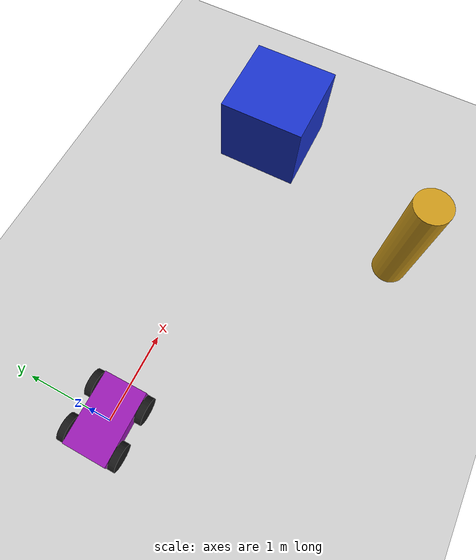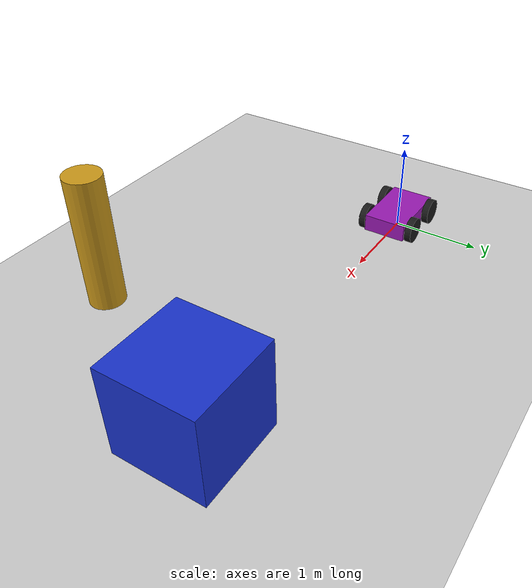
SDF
<?xml version="1.0" ?>
<sdf version="1.8">
  <world name="mundo_tarea">

    <physics name="1ms" type="ignored">
      <max_step_size>0.001</max_step_size>
      <real_time_factor>1.0</real_time_factor>
    </physics>

    <!-- ====== SISTEMAS DEL MUNDO (ya listos, NO tocar) ================= -->
    <plugin filename="ignition-gazebo-physics-system"
            name="ignition::gazebo::systems::Physics"/>
    <plugin filename="ignition-gazebo-user-commands-system"
            name="ignition::gazebo::systems::UserCommands"/>
    <plugin filename="ignition-gazebo-scene-broadcaster-system"
            name="ignition::gazebo::systems::SceneBroadcaster"/>
    <!-- Activa cámara y LIDAR (sensores de render): -->
    <plugin filename="ignition-gazebo-sensors-system"
            name="ignition::gazebo::systems::Sensors">
      <render_engine>ogre2</render_engine>
    </plugin>
    <!-- Activa los sensores IMU: -->
    <plugin filename="ignition-gazebo-imu-system"
            name="ignition::gazebo::systems::Imu"/>
    <plugin filename="ignition-gazebo-navsat-system"
        name="ignition::gazebo::systems::NavSat"/>

    <light type="directional" name="sol">
      <cast_shadows>true</cast_shadows>
      <pose>0 0 10 0 0 0</pose>
      <diffuse>0.8 0.8 0.8 1</diffuse>
      <specular>0.2 0.2 0.2 1</specular>
      <direction>-0.5 0.1 -0.9</direction>
    </light>

    <model name="suelo">
      <static>true</static>
      <link name="link">
        <collision name="collision">
          <geometry><plane><normal>0 0 1</normal><size>100 100</size></plane></geometry>
        </collision>
        <visual name="visual">
          <geometry><plane><normal>0 0 1</normal><size>100 100</size></plane></geometry>
          <material>
            <ambient>0.8 0.8 0.8 1</ambient>
            <diffuse>0.8 0.8 0.8 1</diffuse>
          </material>
        </visual>
      </link>
    </model>

    <!-- Obstáculos para que tus sensores tengan algo que percibir. -->
    <model name="caja_azul">
      <static>true</static>
      <pose>4 0 0.5 0 0 0</pose>
      <link name="link">
        <collision name="collision"><geometry><box><size>1 1 1</size></box></geometry></collision>
        <visual name="visual">
          <geometry><box><size>1 1 1</size></box></geometry>
          <material><ambient>0.1 0.2 0.8 1</ambient><diffuse>0.1 0.2 0.8 1</diffuse></material>
        </visual>
      </link>
    </model>
    <model name="poste">
      <static>true</static>
      <pose>3 -2 0.75 0 0 0</pose>
      <link name="link">
        <collision name="collision"><geometry><cylinder><radius>0.2</radius><length>1.5</length></cylinder></geometry></collision>
        <visual name="visual">
          <geometry><cylinder><radius>0.2</radius><length>1.5</length></cylinder></geometry>
          <material><ambient>0.8 0.6 0.1 1</ambient><diffuse>0.8 0.6 0.1 1</diffuse></material>
        </visual>
      </link>
    </model>

    <!-- ====== ROBOT OMNIDIRECCIONAL (ya hecho, NO tocar salvo los TODO) = -->
    <model name="robot_omni" canonical_link="chasis">
      <pose>0 0 0 0 0 0</pose>

      <link name="chasis">
        <pose relative_to="__model__">0 0 0.15 0 0 0</pose>
        <inertial>
          <mass>4.0</mass>
          <inertia>
            <ixx>0.09667</ixx><iyy>0.22667</iyy><izz>0.29667</izz>
            <ixy>0</ixy><ixz>0</ixz><iyz>0</iyz>
          </inertia>
        </inertial>
        <visual name="visual">
          <geometry><box><size>0.8 0.5 0.2</size></box></geometry>
          <material><ambient>0.6 0.1 0.7 1</ambient><diffuse>0.6 0.1 0.7 1</diffuse></material>
        </visual>
        <collision name="collision">
          <geometry><box><size>0.8 0.5 0.2</size></box></geometry>
        </collision>

        <!-- TODO 1 — CÁMARA RGB                                           -->
        <!--   Sugerencia: al frente (X positiva) mirando +X. Necesita     -->
        <sensor name="camara_rgb" type="camera">
          <pose>1.0 0 0.2 0 0 0</pose>   <!-- al frente y un poco arriba -->
          <topic>camara</topic>          <!-- gz topic: /camara -->
          <update_rate>30</update_rate>  <!-- 30 imágenes por segundo -->
          <always_on>1</always_on>
          <visualize>true</visualize>
          <camera>
            <horizontal_fov>1.047</horizontal_fov>   <!-- ~60° de apertura -->
            <image>
              <width>640</width>
              <height>480</height>
              <format>R8G8B8</format>                <!-- color RGB de 8 bits -->
            </image>
            <clip>
              <near>0.1</near>   <!-- más cerca de 0.1 m no se ve -->
              <far>100</far>     <!-- más lejos de 100 m no se ve -->
            </clip>
          </camera>
        </sensor>

        <!-- TODO 2 — LIDAR 2D (gpu_lidar)                                 -->
        <!--   horizontal (samples + ángulos) y vertical de 1 muestra,     -->
        <sensor name="lidar_2d" type="gpu_lidar">
          <pose>0 0 0.2 0 0 0</pose>     <!-- sobre el techo del chasis -->
          <topic>escaner</topic>         <!-- gz topic: /escaner -->
          <update_rate>10</update_rate>  <!-- 10 barridos por segundo -->
          <always_on>1</always_on>
          <visualize>true</visualize>
          <lidar>
            <scan>
              <horizontal>
                <samples>360</samples>        <!-- 360 rayos por barrido -->
                <resolution>1</resolution>
                <min_angle>-3.14159</min_angle>
                <max_angle>3.14159</max_angle>   <!-- +180° (vuelta completa) -->
              </horizontal>
              <vertical>
                <samples>1</samples>          <!-- 1 sola fila = LIDAR 2D -->
                <resolution>1</resolution>
                <min_angle>0</min_angle>
                <max_angle>0</max_angle>
              </vertical>
            </scan>
            <range>
              <min>0.12</min>      <!-- distancia mínima medible -->
              <max>12.0</max>      <!-- distancia máxima medible -->
              <resolution>0.01</resolution>
            </range>
          </lidar>
        </sensor>

        <!-- TODO 3 — IMU                                                  -->
        <!--   angular_velocity y linear_acceleration (sensor realista).   -->
        <sensor name="imu_sensor" type="imu">
          <pose>0 0 0 0 0 0</pose>       <!-- en el centro del chasis -->
          <topic>imu</topic>             <!-- gz topic: /imu -->
          <update_rate>100</update_rate> <!-- 100 muestras por segundo -->
          <always_on>1</always_on>
          <imu>
            <angular_velocity>
              <x><noise type="gaussian"><mean>0</mean><stddev>0.009</stddev></noise></x>
              <y><noise type="gaussian"><mean>0</mean><stddev>0.009</stddev></noise></y>
              <z><noise type="gaussian"><mean>0</mean><stddev>0.009</stddev></noise></z>
            </angular_velocity>
            <linear_acceleration>
              <x><noise type="gaussian"><mean>0</mean><stddev>0.021</stddev></noise></x>
              <y><noise type="gaussian"><mean>0</mean><stddev>0.021</stddev></noise></y>
              <z><noise type="gaussian"><mean>0</mean><stddev>0.021</stddev></noise></z>
            </linear_acceleration>
          </imu>
        </sensor>

        <!-- TODO 4 — SENSOR EXTRA (tú eliges)                             -->
        <!--   depth_camera / rgbd_camera / gps / contact / force_torque / -->
        <!--   logical_camera. Justifica tu elección en el README.         -->

        <!--CAMARA DE PROFUNDIDAD -->
        <sensor name="depth_camera" type="depth_camera">
          <pose>0.3 0 0.45 0 0 0</pose>
          <topic>depth_camera</topic>
          <update_rate>10</update_rate>
          <always_on>true</always_on>
          <visualize>true</visualize>

          <camera>
            <horizontal_fov>1.02974</horizontal_fov>

            <image>
              <width>640</width>
              <height>480</height>
            </image>

            <clip>
              <near>0.02</near>
              <far>10</far>
            </clip>

            <noise>
              <type>gaussian</type>
              <mean>0.0</mean>
              <stddev>0.007</stddev>
            </noise>
          </camera>
        </sensor>

        <!-- GPS -->
        <sensor name="navsat" type="navsat">
          <pose>0 0 0.25 0 0 0</pose>
          <topic>gps/fix</topic>
          <update_rate>1</update_rate>
          <always_on>true</always_on>
          <gz_frame_id>gps_link</gz_frame_id>

          <navsat>
            <position_sensing>
              <horizontal>
                <noise type="gaussian">
                  <mean>0.0</mean>
                  <stddev>0.5</stddev>
                </noise>
              </horizontal>
              <vertical>
                <noise type="gaussian">
                  <mean>0.0</mean>
                  <stddev>1.0</stddev>
                </noise>
              </vertical>
            </position_sensing>
          </navsat>
        </sensor>

      </link>

      <!-- Las 4 ruedas mecanum (cilindros normales; el plugin hace la magia). -->
      <link name="rueda_del_izq">
        <pose relative_to="chasis">0.25 0.3 0 -1.5707 0 0</pose>
        <inertial>
          <mass>0.6</mass>
          <inertia><ixx>0.003695</ixx><iyy>0.003695</iyy><izz>0.00675</izz>
            <ixy>0</ixy><ixz>0</ixz><iyz>0</iyz></inertia>
        </inertial>
        <visual name="visual">
          <geometry><cylinder><radius>0.15</radius><length>0.08</length></cylinder></geometry>
          <material><ambient>0.1 0.1 0.1 1</ambient><diffuse>0.1 0.1 0.1 1</diffuse></material>
        </visual>
        <collision name="collision">
          <geometry><cylinder><radius>0.15</radius><length>0.08</length></cylinder></geometry>
        </collision>
      </link>
      <link name="rueda_del_der">
        <pose relative_to="chasis">0.25 -0.3 0 -1.5707 0 0</pose>
        <inertial>
          <mass>0.6</mass>
          <inertia><ixx>0.003695</ixx><iyy>0.003695</iyy><izz>0.00675</izz>
            <ixy>0</ixy><ixz>0</ixz><iyz>0</iyz></inertia>
        </inertial>
        <visual name="visual">
          <geometry><cylinder><radius>0.15</radius><length>0.08</length></cylinder></geometry>
          <material><ambient>0.1 0.1 0.1 1</ambient><diffuse>0.1 0.1 0.1 1</diffuse></material>
        </visual>
        <collision name="collision">
          <geometry><cylinder><radius>0.15</radius><length>0.08</length></cylinder></geometry>
        </collision>
      </link>
      <link name="rueda_tra_izq">
        <pose relative_to="chasis">-0.25 0.3 0 -1.5707 0 0</pose>
        <inertial>
          <mass>0.6</mass>
          <inertia><ixx>0.003695</ixx><iyy>0.003695</iyy><izz>0.00675</izz>
            <ixy>0</ixy><ixz>0</ixz><iyz>0</iyz></inertia>
        </inertial>
        <visual name="visual">
          <geometry><cylinder><radius>0.15</radius><length>0.08</length></cylinder></geometry>
          <material><ambient>0.1 0.1 0.1 1</ambient><diffuse>0.1 0.1 0.1 1</diffuse></material>
        </visual>
        <collision name="collision">
          <geometry><cylinder><radius>0.15</radius><length>0.08</length></cylinder></geometry>
        </collision>
      </link>
      <link name="rueda_tra_der">
        <pose relative_to="chasis">-0.25 -0.3 0 -1.5707 0 0</pose>
        <inertial>
          <mass>0.6</mass>
          <inertia><ixx>0.003695</ixx><iyy>0.003695</iyy><izz>0.00675</izz>
            <ixy>0</ixy><ixz>0</ixz><iyz>0</iyz></inertia>
        </inertial>
        <visual name="visual">
          <geometry><cylinder><radius>0.15</radius><length>0.08</length></cylinder></geometry>
          <material><ambient>0.1 0.1 0.1 1</ambient><diffuse>0.1 0.1 0.1 1</diffuse></material>
        </visual>
        <collision name="collision">
          <geometry><cylinder><radius>0.15</radius><length>0.08</length></cylinder></geometry>
        </collision>
      </link>

      <!-- Cada rueda gira libremente sobre su eje (Z local tras la rotación). -->
      <joint name="junta_del_izq" type="revolute">
        <parent>chasis</parent><child>rueda_del_izq</child>
        <axis><xyz>0 0 1</xyz>
          <limit><lower>-1.79769e+308</lower><upper>1.79769e+308</upper></limit></axis>
      </joint>
      <joint name="junta_del_der" type="revolute">
        <parent>chasis</parent><child>rueda_del_der</child>
        <axis><xyz>0 0 1</xyz>
          <limit><lower>-1.79769e+308</lower><upper>1.79769e+308</upper></limit></axis>
      </joint>
      <joint name="junta_tra_izq" type="revolute">
        <parent>chasis</parent><child>rueda_tra_izq</child>
        <axis><xyz>0 0 1</xyz>
          <limit><lower>-1.79769e+308</lower><upper>1.79769e+308</upper></limit></axis>
      </joint>
      <joint name="junta_tra_der" type="revolute">
        <parent>chasis</parent><child>rueda_tra_der</child>
        <axis><xyz>0 0 1</xyz>
          <limit><lower>-1.79769e+308</lower><upper>1.79769e+308</upper></limit></axis>
      </joint>

      <!-- Tracción OMNIDIRECCIONAL: traduce Twist (x, y, giro) a las 4 ruedas. -->
      <plugin filename="ignition-gazebo-mecanum-drive-system"
              name="ignition::gazebo::systems::MecanumDrive">
        <front_left_joint>junta_del_izq</front_left_joint>
        <front_right_joint>junta_del_der</front_right_joint>
        <back_left_joint>junta_tra_izq</back_left_joint>
        <back_right_joint>junta_tra_der</back_right_joint>
        <wheel_separation>0.6</wheel_separation>
        <wheelbase>0.5</wheelbase>
        <wheel_radius>0.15</wheel_radius>
        <topic>cmd_vel</topic>
      </plugin>

    </model>
  </world>
</sdf>
